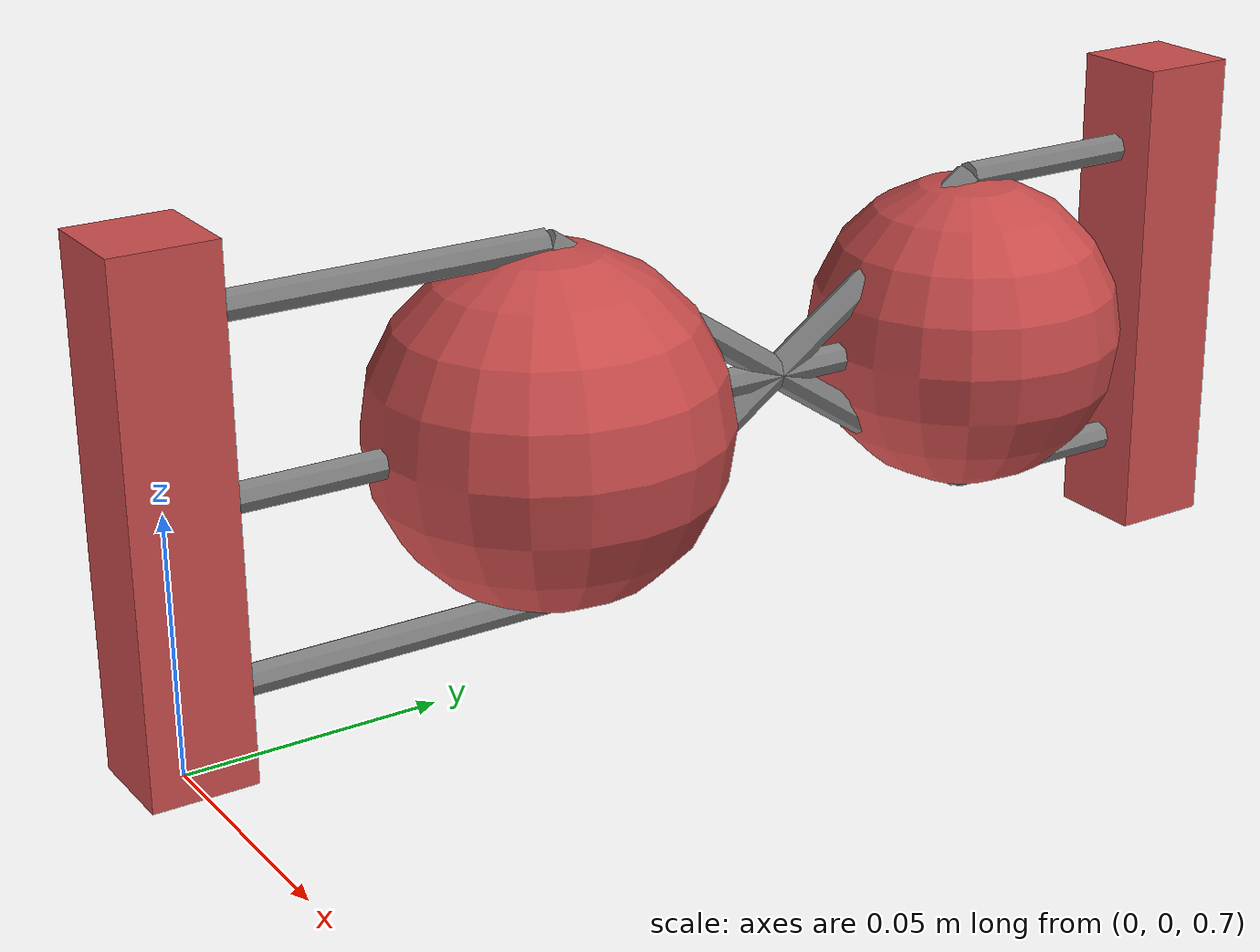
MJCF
<?xml version='1.0' encoding='UTF-8'?>
<mujoco>
    <option timestep="1e-4"/>
    <option gravity="0 0 -9.8"/>

    <asset>
        <texture type="skybox" builtin="gradient" rgb1="1 1 1" rgb2="0.5 0.5 0.5" width="265" height="256"/>
        <texture name="grid" type="2d" builtin="checker" rgb1="0.1 0.1 0.1" rgb2="0.6 0.6 0.6" width="300" height="300"/>
        <material name="grid" texture="grid" texrepeat="10 10" reflectance="0.2"/>
    </asset>

    <worldbody>
        <light pos="0 0 10"/>
        <geom type="plane" size="1 1 0.1" material="grid"/>

        <camera name="side view" pos="1 -2 1" euler="60 0 30" fovy="60"/>
        <camera name="front view" pos="0 -2 1" euler="0 0 0"/>

            <body name="base" pos="0 0 0.75">
            <geom type="box" size="0.01 0.01 0.05" rgba="0.8 0.3 0.3 1"/>
            <site name="top_attachment_0" pos="0 0 0.035" size="0.001" rgba="1 0 0 1"/>
            <site name="middle_attachment_0" pos="0 0 0" size="0.001" rgba="0 1 0 1"/>
            <site name="bottom_attachment_0" pos="0 0 -0.035" size="0.001" rgba="0 0 1 1"/>
            </body>

            <body name="R1" pos="0 0.076 0.75">
            <geom name="R1_geom" type="sphere" size="0.035" rgba="0.8 0.3 0.3 1"/>
            <joint name="R1_joint" type="slide" axis="0 0 1" range="-0.05 0.05"/>
            <site name="top_attachment_1" pos="0 0 0.035" size="0.001" rgba="1 0 0 1"/>
            <site name="middle_attachment_1" pos="0 0 0" size="0.001" rgba="0 1 0 1"/>
            <site name="bottom_attachment_1" pos="0 0 -0.035" size="0.001" rgba="0 0 1 1"/>
            </body>

            <body name="R2" pos="0 0.174 0.75">
            <geom name="R2_geom" type="sphere" size="0.032" rgba="0.8 0.3 0.3 1"/>
            <joint name="R2_joint" type="slide" axis="0 0 1" range="-0.10 0.10"/>
            <site name="top_attachment_2" pos="0 0 0.032" size="0.001" rgba="1 0 0 1"/>
            <site name="middle_attachment_2" pos="0 0 0" size="0.001" rgba="0 1 0 1"/>
            <site name="bottom_attachment_2" pos="0 0 -0.032" size="0.001" rgba="0 0 1 1"/>
            </body>

            <body name="S" pos="0 0.223 0.75">
            <joint name="vertical_joint" type="slide" axis="0 0 1" range="-0.1 0.1"/>
            <geom type="box" size="0.01 0.01 0.05" rgba="0.8 0.3 0.3 1" mass="0.001"/>
            <site name="top_attachment_00" pos="0 0 0.032" size="0.001" rgba="1 0 0 1"/>
            <site name="middle_attachment_00" pos="0 0 0" size="0.001" rgba="0 1 0 1"/>
            <site name="bottom_attachment_00" pos="0 0 -0.032" size="0.001" rgba="0 0 1 1"/>
            </body>

    </worldbody>

    <tendon>
        <spatial name="a">
            <site site="middle_attachment_0"/>
            <site site="middle_attachment_1"/>
        </spatial>

        <spatial name="b">
            <site site="middle_attachment_1"/>
            <site site="middle_attachment_2"/>
        </spatial>

         <spatial name="c">
            <site site="middle_attachment_2"/>
            <site site="middle_attachment_00"/>
        </spatial>

        <spatial name="tendon2">
            <site site="top_attachment_0"/>
            <site site="top_attachment_1"/>
            <site site="bottom_attachment_2"/>
            <site site="bottom_attachment_00"/>
        </spatial>

        <spatial name="tendon3">
            <site site="bottom_attachment_0"/>
            <site site="bottom_attachment_1"/>
            <site site="top_attachment_2"/>
            <site site="top_attachment_00"/>
        </spatial>

    </tendon>

 <actuator>
    <muscle name="q1" tendon="tendon2" ctrlrange="0 1" force="20000" lengthrange="0.1 1.0"/>
    <muscle name="q2" tendon="tendon3" ctrlrange="0 1" force="2000" lengthrange="0.1 1.0"/>
 </actuator>

    <sensor>

        <framepos objtype="site" objname="middle_attachment_00"/>

        <jointpos name="R1_position" joint="R1_joint"/>
        <jointpos name="R2_position" joint="R2_joint"/>
        <jointpos name="vertical_position" joint="vertical_joint"/>
    </sensor>

</mujoco>
